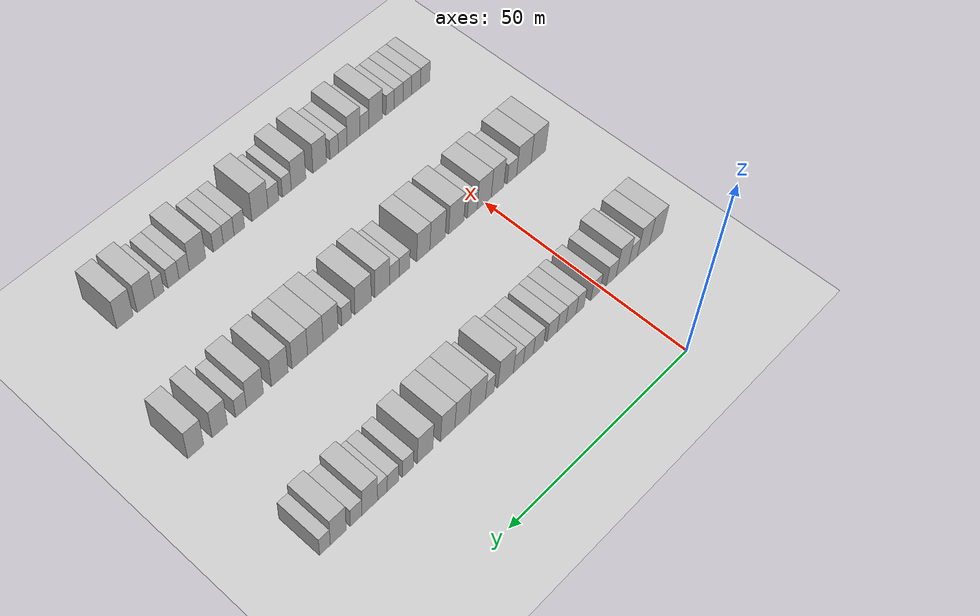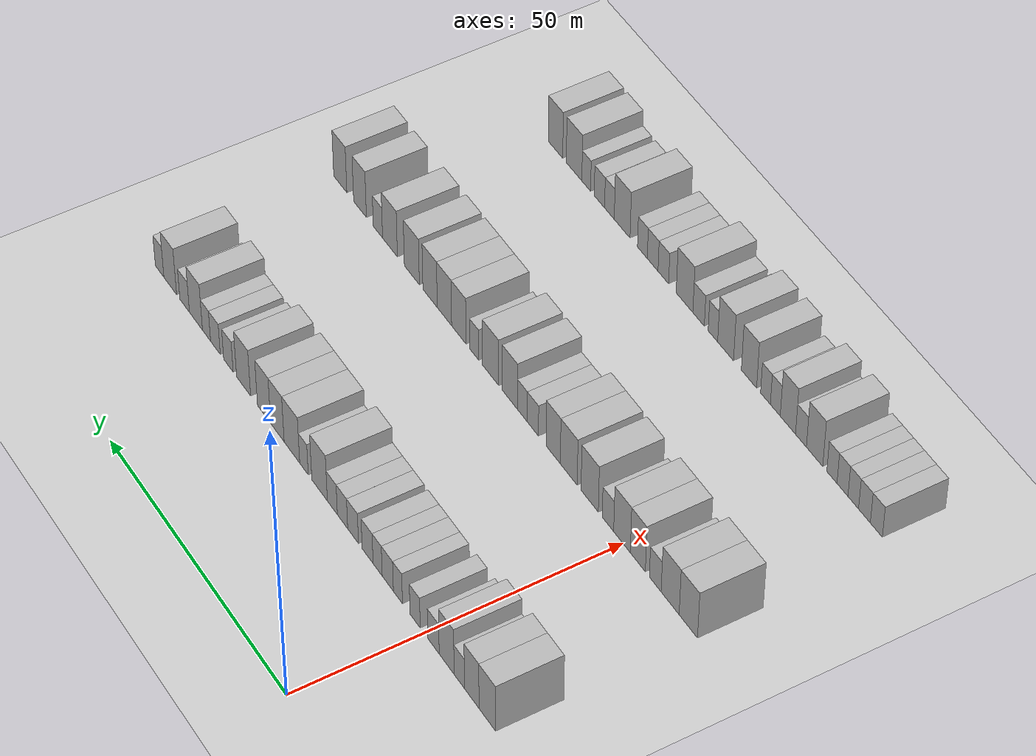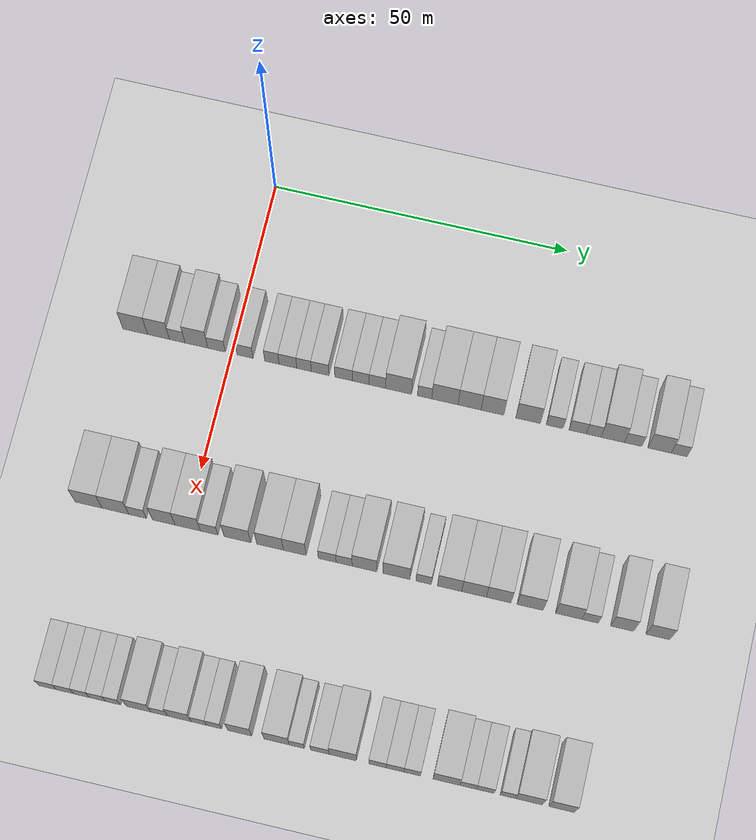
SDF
<sdf version="1.6">
 <world name="default">
  <include><name>ground_plane_1</name><uri>model://HANNAS_ground_plane</uri></include>
  <model name="building_110">
   <static>1</static>
   <pose>25.0000 -16.3483 0 0.000000 0.000000 0.000000</pose>
   <link name="link">
    <pose>0 0 4.50 0 0 0</pose>
    <collision name="collision"><geometry><box><size>10.0000 4.1961 9.0000</size></box></geometry></collision>
    <visual name="visual">
     <cast_shadows>0</cast_shadows>
     <geometry><box><size>10.0000 4.1961 9.0000</size></box></geometry>
     <material>
      <script>
       <uri>model://HANNAS_wall/materials/scripts</uri>
       <uri>model://HANNAS_wall/materials/textures</uri>
       <name>vrc/HANNAS_wall</name>
      </script>
     </material>
    </visual>
   </link>
  </model>
  <model name="building_111">
   <static>1</static>
   <pose>25.0000 -12.3957 0 0.000000 0.000000 0.000000</pose>
   <link name="link">
    <pose>0 0 4.50 0 0 0</pose>
    <collision name="collision"><geometry><box><size>10.0000 3.7091 9.0000</size></box></geometry></collision>
    <visual name="visual">
     <cast_shadows>0</cast_shadows>
     <geometry><box><size>10.0000 3.7091 9.0000</size></box></geometry>
     <material>
      <script>
       <uri>model://HANNAS_wall/materials/scripts</uri>
       <uri>model://HANNAS_wall/materials/textures</uri>
       <name>vrc/HANNAS_wall</name>
      </script>
     </material>
    </visual>
   </link>
  </model>
  <model name="building_112">
   <static>1</static>
   <pose>25.0000 -9.2106 0 0.000000 0.000000 0.000000</pose>
   <link name="link">
    <pose>0 0 3.00 0 0 0</pose>
    <collision name="collision"><geometry><box><size>10.0000 2.6610 6.0000</size></box></geometry></collision>
    <visual name="visual">
     <cast_shadows>0</cast_shadows>
     <geometry><box><size>10.0000 2.6610 6.0000</size></box></geometry>
     <material>
      <script>
       <uri>model://HANNAS_wall/materials/scripts</uri>
       <uri>model://HANNAS_wall/materials/textures</uri>
       <name>vrc/HANNAS_wall</name>
      </script>
     </material>
    </visual>
   </link>
  </model>
  <model name="building_113">
   <static>1</static>
   <pose>25.0000 -5.9461 0 0.000000 0.000000 0.000000</pose>
   <link name="link">
    <pose>0 0 4.50 0 0 0</pose>
    <collision name="collision"><geometry><box><size>10.0000 3.8680 9.0000</size></box></geometry></collision>
    <visual name="visual">
     <cast_shadows>0</cast_shadows>
     <geometry><box><size>10.0000 3.8680 9.0000</size></box></geometry>
     <material>
      <script>
       <uri>model://HANNAS_wall/materials/scripts</uri>
       <uri>model://HANNAS_wall/materials/textures</uri>
       <name>vrc/HANNAS_wall</name>
      </script>
     </material>
    </visual>
   </link>
  </model>
  <model name="building_114">
   <static>1</static>
   <pose>25.0000 -2.5321 0 0.000000 0.000000 0.000000</pose>
   <link name="link">
    <pose>0 0 3.00 0 0 0</pose>
    <collision name="collision"><geometry><box><size>10.0000 2.9600 6.0000</size></box></geometry></collision>
    <visual name="visual">
     <cast_shadows>0</cast_shadows>
     <geometry><box><size>10.0000 2.9600 6.0000</size></box></geometry>
     <material>
      <script>
       <uri>model://HANNAS_wall/materials/scripts</uri>
       <uri>model://HANNAS_wall/materials/textures</uri>
       <name>vrc/HANNAS_wall</name>
      </script>
     </material>
    </visual>
   </link>
  </model>
  <model name="building_115">
   <static>1</static>
   <pose>25.0000 2.2898 0 0.000000 0.000000 0.000000</pose>
   <link name="link">
    <pose>0 0 3.00 0 0 0</pose>
    <collision name="collision"><geometry><box><size>10.0000 2.6838 6.0000</size></box></geometry></collision>
    <visual name="visual">
     <cast_shadows>0</cast_shadows>
     <geometry><box><size>10.0000 2.6838 6.0000</size></box></geometry>
     <material>
      <script>
       <uri>model://HANNAS_wall/materials/scripts</uri>
       <uri>model://HANNAS_wall/materials/textures</uri>
       <name>vrc/HANNAS_wall</name>
      </script>
     </material>
    </visual>
   </link>
  </model>
  <model name="building_116">
   <static>1</static>
   <pose>25.0000 6.8391 0 0.000000 0.000000 0.000000</pose>
   <link name="link">
    <pose>0 0 3.00 0 0 0</pose>
    <collision name="collision"><geometry><box><size>10.0000 2.4148 6.0000</size></box></geometry></collision>
    <visual name="visual">
     <cast_shadows>0</cast_shadows>
     <geometry><box><size>10.0000 2.4148 6.0000</size></box></geometry>
     <material>
      <script>
       <uri>model://HANNAS_wall/materials/scripts</uri>
       <uri>model://HANNAS_wall/materials/textures</uri>
       <name>vrc/HANNAS_wall</name>
      </script>
     </material>
    </visual>
   </link>
  </model>
  <model name="building_117">
   <static>1</static>
   <pose>25.0000 9.5415 0 0.000000 0.000000 0.000000</pose>
   <link name="link">
    <pose>0 0 3.00 0 0 0</pose>
    <collision name="collision"><geometry><box><size>10.0000 2.9901 6.0000</size></box></geometry></collision>
    <visual name="visual">
     <cast_shadows>0</cast_shadows>
     <geometry><box><size>10.0000 2.9901 6.0000</size></box></geometry>
     <material>
      <script>
       <uri>model://HANNAS_wall/materials/scripts</uri>
       <uri>model://HANNAS_wall/materials/textures</uri>
       <name>vrc/HANNAS_wall</name>
      </script>
     </material>
    </visual>
   </link>
  </model>
  <model name="building_118">
   <static>1</static>
   <pose>25.0000 12.2671 0 0.000000 0.000000 0.000000</pose>
   <link name="link">
    <pose>0 0 3.00 0 0 0</pose>
    <collision name="collision"><geometry><box><size>10.0000 2.4611 6.0000</size></box></geometry></collision>
    <visual name="visual">
     <cast_shadows>0</cast_shadows>
     <geometry><box><size>10.0000 2.4611 6.0000</size></box></geometry>
     <material>
      <script>
       <uri>model://HANNAS_wall/materials/scripts</uri>
       <uri>model://HANNAS_wall/materials/textures</uri>
       <name>vrc/HANNAS_wall</name>
      </script>
     </material>
    </visual>
   </link>
  </model>
  <model name="building_119">
   <static>1</static>
   <pose>25.0000 14.9735 0 0.000000 0.000000 0.000000</pose>
   <link name="link">
    <pose>0 0 3.00 0 0 0</pose>
    <collision name="collision"><geometry><box><size>10.0000 2.9517 6.0000</size></box></geometry></collision>
    <visual name="visual">
     <cast_shadows>0</cast_shadows>
     <geometry><box><size>10.0000 2.9517 6.0000</size></box></geometry>
     <material>
      <script>
       <uri>model://HANNAS_wall/materials/scripts</uri>
       <uri>model://HANNAS_wall/materials/textures</uri>
       <name>vrc/HANNAS_wall</name>
      </script>
     </material>
    </visual>
   </link>
  </model>
  <model name="building_120">
   <static>1</static>
   <pose>25.0000 18.9226 0 0.000000 0.000000 0.000000</pose>
   <link name="link">
    <pose>0 0 3.00 0 0 0</pose>
    <collision name="collision"><geometry><box><size>10.0000 2.9467 6.0000</size></box></geometry></collision>
    <visual name="visual">
     <cast_shadows>0</cast_shadows>
     <geometry><box><size>10.0000 2.9467 6.0000</size></box></geometry>
     <material>
      <script>
       <uri>model://HANNAS_wall/materials/scripts</uri>
       <uri>model://HANNAS_wall/materials/textures</uri>
       <name>vrc/HANNAS_wall</name>
      </script>
     </material>
    </visual>
   </link>
  </model>
  <model name="building_121">
   <static>1</static>
   <pose>25.0000 21.8123 0 0.000000 0.000000 0.000000</pose>
   <link name="link">
    <pose>0 0 3.00 0 0 0</pose>
    <collision name="collision"><geometry><box><size>10.0000 2.8325 6.0000</size></box></geometry></collision>
    <visual name="visual">
     <cast_shadows>0</cast_shadows>
     <geometry><box><size>10.0000 2.8325 6.0000</size></box></geometry>
     <material>
      <script>
       <uri>model://HANNAS_wall/materials/scripts</uri>
       <uri>model://HANNAS_wall/materials/textures</uri>
       <name>vrc/HANNAS_wall</name>
      </script>
     </material>
    </visual>
   </link>
  </model>
  <model name="building_122">
   <static>1</static>
   <pose>25.0000 24.6135 0 0.000000 0.000000 0.000000</pose>
   <link name="link">
    <pose>0 0 3.00 0 0 0</pose>
    <collision name="collision"><geometry><box><size>10.0000 2.7700 6.0000</size></box></geometry></collision>
    <visual name="visual">
     <cast_shadows>0</cast_shadows>
     <geometry><box><size>10.0000 2.7700 6.0000</size></box></geometry>
     <material>
      <script>
       <uri>model://HANNAS_wall/materials/scripts</uri>
       <uri>model://HANNAS_wall/materials/textures</uri>
       <name>vrc/HANNAS_wall</name>
      </script>
     </material>
    </visual>
   </link>
  </model>
  <model name="building_123">
   <static>1</static>
   <pose>25.0000 28.1630 0 0.000000 0.000000 0.000000</pose>
   <link name="link">
    <pose>0 0 4.50 0 0 0</pose>
    <collision name="collision"><geometry><box><size>10.0000 4.3291 9.0000</size></box></geometry></collision>
    <visual name="visual">
     <cast_shadows>0</cast_shadows>
     <geometry><box><size>10.0000 4.3291 9.0000</size></box></geometry>
     <material>
      <script>
       <uri>model://HANNAS_wall/materials/scripts</uri>
       <uri>model://HANNAS_wall/materials/textures</uri>
       <name>vrc/HANNAS_wall</name>
      </script>
     </material>
    </visual>
   </link>
  </model>
  <model name="building_124">
   <static>1</static>
   <pose>25.0000 32.5312 0 0.000000 0.000000 0.000000</pose>
   <link name="link">
    <pose>0 0 3.00 0 0 0</pose>
    <collision name="collision"><geometry><box><size>10.0000 2.4074 6.0000</size></box></geometry></collision>
    <visual name="visual">
     <cast_shadows>0</cast_shadows>
     <geometry><box><size>10.0000 2.4074 6.0000</size></box></geometry>
     <material>
      <script>
       <uri>model://HANNAS_wall/materials/scripts</uri>
       <uri>model://HANNAS_wall/materials/textures</uri>
       <name>vrc/HANNAS_wall</name>
      </script>
     </material>
    </visual>
   </link>
  </model>
  <model name="building_125">
   <static>1</static>
   <pose>25.0000 35.9375 0 0.000000 0.000000 0.000000</pose>
   <link name="link">
    <pose>0 0 4.50 0 0 0</pose>
    <collision name="collision"><geometry><box><size>10.0000 4.4051 9.0000</size></box></geometry></collision>
    <visual name="visual">
     <cast_shadows>0</cast_shadows>
     <geometry><box><size>10.0000 4.4051 9.0000</size></box></geometry>
     <material>
      <script>
       <uri>model://HANNAS_wall/materials/scripts</uri>
       <uri>model://HANNAS_wall/materials/textures</uri>
       <name>vrc/HANNAS_wall</name>
      </script>
     </material>
    </visual>
   </link>
  </model>
  <model name="building_126">
   <static>1</static>
   <pose>25.0000 40.0583 0 0.000000 0.000000 0.000000</pose>
   <link name="link">
    <pose>0 0 4.50 0 0 0</pose>
    <collision name="collision"><geometry><box><size>10.0000 3.8366 9.0000</size></box></geometry></collision>
    <visual name="visual">
     <cast_shadows>0</cast_shadows>
     <geometry><box><size>10.0000 3.8366 9.0000</size></box></geometry>
     <material>
      <script>
       <uri>model://HANNAS_wall/materials/scripts</uri>
       <uri>model://HANNAS_wall/materials/textures</uri>
       <name>vrc/HANNAS_wall</name>
      </script>
     </material>
    </visual>
   </link>
  </model>
  <model name="building_127">
   <static>1</static>
   <pose>25.0000 43.8748 0 0.000000 0.000000 0.000000</pose>
   <link name="link">
    <pose>0 0 4.50 0 0 0</pose>
    <collision name="collision"><geometry><box><size>10.0000 3.7963 9.0000</size></box></geometry></collision>
    <visual name="visual">
     <cast_shadows>0</cast_shadows>
     <geometry><box><size>10.0000 3.7963 9.0000</size></box></geometry>
     <material>
      <script>
       <uri>model://HANNAS_wall/materials/scripts</uri>
       <uri>model://HANNAS_wall/materials/textures</uri>
       <name>vrc/HANNAS_wall</name>
      </script>
     </material>
    </visual>
   </link>
  </model>
  <model name="building_128">
   <static>1</static>
   <pose>25.0000 49.8148 0 0.000000 0.000000 0.000000</pose>
   <link name="link">
    <pose>0 0 4.50 0 0 0</pose>
    <collision name="collision"><geometry><box><size>10.0000 4.0838 9.0000</size></box></geometry></collision>
    <visual name="visual">
     <cast_shadows>0</cast_shadows>
     <geometry><box><size>10.0000 4.0838 9.0000</size></box></geometry>
     <material>
      <script>
       <uri>model://HANNAS_wall/materials/scripts</uri>
       <uri>model://HANNAS_wall/materials/textures</uri>
       <name>vrc/HANNAS_wall</name>
      </script>
     </material>
    </visual>
   </link>
  </model>
  <model name="building_129">
   <static>1</static>
   <pose>25.0000 54.2531 0 0.000000 0.000000 0.000000</pose>
   <link name="link">
    <pose>0 0 3.00 0 0 0</pose>
    <collision name="collision"><geometry><box><size>10.0000 2.7929 6.0000</size></box></geometry></collision>
    <visual name="visual">
     <cast_shadows>0</cast_shadows>
     <geometry><box><size>10.0000 2.7929 6.0000</size></box></geometry>
     <material>
      <script>
       <uri>model://HANNAS_wall/materials/scripts</uri>
       <uri>model://HANNAS_wall/materials/textures</uri>
       <name>vrc/HANNAS_wall</name>
      </script>
     </material>
    </visual>
   </link>
  </model>
  <model name="building_130">
   <static>1</static>
   <pose>25.0000 58.0858 0 0.000000 0.000000 0.000000</pose>
   <link name="link">
    <pose>0 0 3.00 0 0 0</pose>
    <collision name="collision"><geometry><box><size>10.0000 2.8725 6.0000</size></box></geometry></collision>
    <visual name="visual">
     <cast_shadows>0</cast_shadows>
     <geometry><box><size>10.0000 2.8725 6.0000</size></box></geometry>
     <material>
      <script>
       <uri>model://HANNAS_wall/materials/scripts</uri>
       <uri>model://HANNAS_wall/materials/textures</uri>
       <name>vrc/HANNAS_wall</name>
      </script>
     </material>
    </visual>
   </link>
  </model>
  <model name="building_131">
   <static>1</static>
   <pose>25.0000 60.7344 0 0.000000 0.000000 0.000000</pose>
   <link name="link">
    <pose>0 0 3.00 0 0 0</pose>
    <collision name="collision"><geometry><box><size>10.0000 2.4247 6.0000</size></box></geometry></collision>
    <visual name="visual">
     <cast_shadows>0</cast_shadows>
     <geometry><box><size>10.0000 2.4247 6.0000</size></box></geometry>
     <material>
      <script>
       <uri>model://HANNAS_wall/materials/scripts</uri>
       <uri>model://HANNAS_wall/materials/textures</uri>
       <name>vrc/HANNAS_wall</name>
      </script>
     </material>
    </visual>
   </link>
  </model>
  <model name="building_132">
   <static>1</static>
   <pose>25.0000 63.8977 0 0.000000 0.000000 0.000000</pose>
   <link name="link">
    <pose>0 0 4.50 0 0 0</pose>
    <collision name="collision"><geometry><box><size>10.0000 3.9019 9.0000</size></box></geometry></collision>
    <visual name="visual">
     <cast_shadows>0</cast_shadows>
     <geometry><box><size>10.0000 3.9019 9.0000</size></box></geometry>
     <material>
      <script>
       <uri>model://HANNAS_wall/materials/scripts</uri>
       <uri>model://HANNAS_wall/materials/textures</uri>
       <name>vrc/HANNAS_wall</name>
      </script>
     </material>
    </visual>
   </link>
  </model>
  <model name="building_133">
   <static>1</static>
   <pose>25.0000 67.2927 0 0.000000 0.000000 0.000000</pose>
   <link name="link">
    <pose>0 0 3.00 0 0 0</pose>
    <collision name="collision"><geometry><box><size>10.0000 2.8882 6.0000</size></box></geometry></collision>
    <visual name="visual">
     <cast_shadows>0</cast_shadows>
     <geometry><box><size>10.0000 2.8882 6.0000</size></box></geometry>
     <material>
      <script>
       <uri>model://HANNAS_wall/materials/scripts</uri>
       <uri>model://HANNAS_wall/materials/textures</uri>
       <name>vrc/HANNAS_wall</name>
      </script>
     </material>
    </visual>
   </link>
  </model>
  <model name="building_134">
   <static>1</static>
   <pose>25.0000 71.6695 0 0.000000 0.000000 0.000000</pose>
   <link name="link">
    <pose>0 0 4.50 0 0 0</pose>
    <collision name="collision"><geometry><box><size>10.0000 3.8654 9.0000</size></box></geometry></collision>
    <visual name="visual">
     <cast_shadows>0</cast_shadows>
     <geometry><box><size>10.0000 3.8654 9.0000</size></box></geometry>
     <material>
      <script>
       <uri>model://HANNAS_wall/materials/scripts</uri>
       <uri>model://HANNAS_wall/materials/textures</uri>
       <name>vrc/HANNAS_wall</name>
      </script>
     </material>
    </visual>
   </link>
  </model>
  <model name="building_135">
   <static>1</static>
   <pose>25.0000 74.9072 0 0.000000 0.000000 0.000000</pose>
   <link name="link">
    <pose>0 0 3.00 0 0 0</pose>
    <collision name="collision"><geometry><box><size>10.0000 2.6099 6.0000</size></box></geometry></collision>
    <visual name="visual">
     <cast_shadows>0</cast_shadows>
     <geometry><box><size>10.0000 2.6099 6.0000</size></box></geometry>
     <material>
      <script>
       <uri>model://HANNAS_wall/materials/scripts</uri>
       <uri>model://HANNAS_wall/materials/textures</uri>
       <name>vrc/HANNAS_wall</name>
      </script>
     </material>
    </visual>
   </link>
  </model>
  <model name="building_347">
   <static>1</static>
   <pose>55.0000 -16.1618 0 0.000000 0.000000 0.000000</pose>
   <link name="link">
    <pose>0 0 4.50 0 0 0</pose>
    <collision name="collision"><geometry><box><size>10.0000 4.4909 9.0000</size></box></geometry></collision>
    <visual name="visual">
     <cast_shadows>0</cast_shadows>
     <geometry><box><size>10.0000 4.4909 9.0000</size></box></geometry>
     <material>
      <script>
       <uri>model://HANNAS_wall/materials/scripts</uri>
       <uri>model://HANNAS_wall/materials/textures</uri>
       <name>vrc/HANNAS_wall</name>
      </script>
     </material>
    </visual>
   </link>
  </model>
  <model name="building_348">
   <static>1</static>
   <pose>55.0000 -11.6974 0 0.000000 0.000000 0.000000</pose>
   <link name="link">
    <pose>0 0 4.50 0 0 0</pose>
    <collision name="collision"><geometry><box><size>10.0000 4.4381 9.0000</size></box></geometry></collision>
    <visual name="visual">
     <cast_shadows>0</cast_shadows>
     <geometry><box><size>10.0000 4.4381 9.0000</size></box></geometry>
     <material>
      <script>
       <uri>model://HANNAS_wall/materials/scripts</uri>
       <uri>model://HANNAS_wall/materials/textures</uri>
       <name>vrc/HANNAS_wall</name>
      </script>
     </material>
    </visual>
   </link>
  </model>
  <model name="building_349">
   <static>1</static>
   <pose>55.0000 -8.0192 0 0.000000 0.000000 0.000000</pose>
   <link name="link">
    <pose>0 0 3.00 0 0 0</pose>
    <collision name="collision"><geometry><box><size>10.0000 2.9183 6.0000</size></box></geometry></collision>
    <visual name="visual">
     <cast_shadows>0</cast_shadows>
     <geometry><box><size>10.0000 2.9183 6.0000</size></box></geometry>
     <material>
      <script>
       <uri>model://HANNAS_wall/materials/scripts</uri>
       <uri>model://HANNAS_wall/materials/textures</uri>
       <name>vrc/HANNAS_wall</name>
      </script>
     </material>
    </visual>
   </link>
  </model>
  <model name="building_350">
   <static>1</static>
   <pose>55.0000 -3.6680 0 0.000000 0.000000 0.000000</pose>
   <link name="link">
    <pose>0 0 4.50 0 0 0</pose>
    <collision name="collision"><geometry><box><size>10.0000 3.7841 9.0000</size></box></geometry></collision>
    <visual name="visual">
     <cast_shadows>0</cast_shadows>
     <geometry><box><size>10.0000 3.7841 9.0000</size></box></geometry>
     <material>
      <script>
       <uri>model://HANNAS_wall/materials/scripts</uri>
       <uri>model://HANNAS_wall/materials/textures</uri>
       <name>vrc/HANNAS_wall</name>
      </script>
     </material>
    </visual>
   </link>
  </model>
  <model name="building_351">
   <static>1</static>
   <pose>55.0000 0.3241 0 0.000000 0.000000 0.000000</pose>
   <link name="link">
    <pose>0 0 4.50 0 0 0</pose>
    <collision name="collision"><geometry><box><size>10.0000 4.2002 9.0000</size></box></geometry></collision>
    <visual name="visual">
     <cast_shadows>0</cast_shadows>
     <geometry><box><size>10.0000 4.2002 9.0000</size></box></geometry>
     <material>
      <script>
       <uri>model://HANNAS_wall/materials/scripts</uri>
       <uri>model://HANNAS_wall/materials/textures</uri>
       <name>vrc/HANNAS_wall</name>
      </script>
     </material>
    </visual>
   </link>
  </model>
  <model name="building_352">
   <static>1</static>
   <pose>55.0000 3.8815 0 0.000000 0.000000 0.000000</pose>
   <link name="link">
    <pose>0 0 3.00 0 0 0</pose>
    <collision name="collision"><geometry><box><size>10.0000 2.9144 6.0000</size></box></geometry></collision>
    <visual name="visual">
     <cast_shadows>0</cast_shadows>
     <geometry><box><size>10.0000 2.9144 6.0000</size></box></geometry>
     <material>
      <script>
       <uri>model://HANNAS_wall/materials/scripts</uri>
       <uri>model://HANNAS_wall/materials/textures</uri>
       <name>vrc/HANNAS_wall</name>
      </script>
     </material>
    </visual>
   </link>
  </model>
  <model name="building_353">
   <static>1</static>
   <pose>55.0000 8.5628 0 0.000000 0.000000 0.000000</pose>
   <link name="link">
    <pose>0 0 4.50 0 0 0</pose>
    <collision name="collision"><geometry><box><size>10.0000 4.4483 9.0000</size></box></geometry></collision>
    <visual name="visual">
     <cast_shadows>0</cast_shadows>
     <geometry><box><size>10.0000 4.4483 9.0000</size></box></geometry>
     <material>
      <script>
       <uri>model://HANNAS_wall/materials/scripts</uri>
       <uri>model://HANNAS_wall/materials/textures</uri>
       <name>vrc/HANNAS_wall</name>
      </script>
     </material>
    </visual>
   </link>
  </model>
  <model name="building_354">
   <static>1</static>
   <pose>55.0000 13.9788 0 0.000000 0.000000 0.000000</pose>
   <link name="link">
    <pose>0 0 4.50 0 0 0</pose>
    <collision name="collision"><geometry><box><size>10.0000 4.3838 9.0000</size></box></geometry></collision>
    <visual name="visual">
     <cast_shadows>0</cast_shadows>
     <geometry><box><size>10.0000 4.3838 9.0000</size></box></geometry>
     <material>
      <script>
       <uri>model://HANNAS_wall/materials/scripts</uri>
       <uri>model://HANNAS_wall/materials/textures</uri>
       <name>vrc/HANNAS_wall</name>
      </script>
     </material>
    </visual>
   </link>
  </model>
  <model name="building_355">
   <static>1</static>
   <pose>55.0000 18.0487 0 0.000000 0.000000 0.000000</pose>
   <link name="link">
    <pose>0 0 4.50 0 0 0</pose>
    <collision name="collision"><geometry><box><size>10.0000 3.7559 9.0000</size></box></geometry></collision>
    <visual name="visual">
     <cast_shadows>0</cast_shadows>
     <geometry><box><size>10.0000 3.7559 9.0000</size></box></geometry>
     <material>
      <script>
       <uri>model://HANNAS_wall/materials/scripts</uri>
       <uri>model://HANNAS_wall/materials/textures</uri>
       <name>vrc/HANNAS_wall</name>
      </script>
     </material>
    </visual>
   </link>
  </model>
  <model name="building_356">
   <static>1</static>
   <pose>55.0000 23.4030 0 0.000000 0.000000 0.000000</pose>
   <link name="link">
    <pose>0 0 3.00 0 0 0</pose>
    <collision name="collision"><geometry><box><size>10.0000 2.9528 6.0000</size></box></geometry></collision>
    <visual name="visual">
     <cast_shadows>0</cast_shadows>
     <geometry><box><size>10.0000 2.9528 6.0000</size></box></geometry>
     <material>
      <script>
       <uri>model://HANNAS_wall/materials/scripts</uri>
       <uri>model://HANNAS_wall/materials/textures</uri>
       <name>vrc/HANNAS_wall</name>
      </script>
     </material>
    </visual>
   </link>
  </model>
  <model name="building_357">
   <static>1</static>
   <pose>55.0000 26.1905 0 0.000000 0.000000 0.000000</pose>
   <link name="link">
    <pose>0 0 3.00 0 0 0</pose>
    <collision name="collision"><geometry><box><size>10.0000 2.6221 6.0000</size></box></geometry></collision>
    <visual name="visual">
     <cast_shadows>0</cast_shadows>
     <geometry><box><size>10.0000 2.6221 6.0000</size></box></geometry>
     <material>
      <script>
       <uri>model://HANNAS_wall/materials/scripts</uri>
       <uri>model://HANNAS_wall/materials/textures</uri>
       <name>vrc/HANNAS_wall</name>
      </script>
     </material>
    </visual>
   </link>
  </model>
  <model name="building_358">
   <static>1</static>
   <pose>55.0000 29.5306 0 0.000000 0.000000 0.000000</pose>
   <link name="link">
    <pose>0 0 4.50 0 0 0</pose>
    <collision name="collision"><geometry><box><size>10.0000 4.0579 9.0000</size></box></geometry></collision>
    <visual name="visual">
     <cast_shadows>0</cast_shadows>
     <geometry><box><size>10.0000 4.0579 9.0000</size></box></geometry>
     <material>
      <script>
       <uri>model://HANNAS_wall/materials/scripts</uri>
       <uri>model://HANNAS_wall/materials/textures</uri>
       <name>vrc/HANNAS_wall</name>
      </script>
     </material>
    </visual>
   </link>
  </model>
  <model name="building_359">
   <static>1</static>
   <pose>55.0000 34.7676 0 0.000000 0.000000 0.000000</pose>
   <link name="link">
    <pose>0 0 4.50 0 0 0</pose>
    <collision name="collision"><geometry><box><size>10.0000 4.4163 9.0000</size></box></geometry></collision>
    <visual name="visual">
     <cast_shadows>0</cast_shadows>
     <geometry><box><size>10.0000 4.4163 9.0000</size></box></geometry>
     <material>
      <script>
       <uri>model://HANNAS_wall/materials/scripts</uri>
       <uri>model://HANNAS_wall/materials/textures</uri>
       <name>vrc/HANNAS_wall</name>
      </script>
     </material>
    </visual>
   </link>
  </model>
  <model name="building_360">
   <static>1</static>
   <pose>55.0000 39.2343 0 0.000000 0.000000 0.000000</pose>
   <link name="link">
    <pose>0 0 3.00 0 0 0</pose>
    <collision name="collision"><geometry><box><size>10.0000 2.5171 6.0000</size></box></geometry></collision>
    <visual name="visual">
     <cast_shadows>0</cast_shadows>
     <geometry><box><size>10.0000 2.5171 6.0000</size></box></geometry>
     <material>
      <script>
       <uri>model://HANNAS_wall/materials/scripts</uri>
       <uri>model://HANNAS_wall/materials/textures</uri>
       <name>vrc/HANNAS_wall</name>
      </script>
     </material>
    </visual>
   </link>
  </model>
  <model name="building_361">
   <static>1</static>
   <pose>55.0000 43.4870 0 0.000000 0.000000 0.000000</pose>
   <link name="link">
    <pose>0 0 4.50 0 0 0</pose>
    <collision name="collision"><geometry><box><size>10.0000 3.9881 9.0000</size></box></geometry></collision>
    <visual name="visual">
     <cast_shadows>0</cast_shadows>
     <geometry><box><size>10.0000 3.9881 9.0000</size></box></geometry>
     <material>
      <script>
       <uri>model://HANNAS_wall/materials/scripts</uri>
       <uri>model://HANNAS_wall/materials/textures</uri>
       <name>vrc/HANNAS_wall</name>
      </script>
     </material>
    </visual>
   </link>
  </model>
  <model name="building_362">
   <static>1</static>
   <pose>55.0000 47.4883 0 0.000000 0.000000 0.000000</pose>
   <link name="link">
    <pose>0 0 4.50 0 0 0</pose>
    <collision name="collision"><geometry><box><size>10.0000 4.0146 9.0000</size></box></geometry></collision>
    <visual name="visual">
     <cast_shadows>0</cast_shadows>
     <geometry><box><size>10.0000 4.0146 9.0000</size></box></geometry>
     <material>
      <script>
       <uri>model://HANNAS_wall/materials/scripts</uri>
       <uri>model://HANNAS_wall/materials/textures</uri>
       <name>vrc/HANNAS_wall</name>
      </script>
     </material>
    </visual>
   </link>
  </model>
  <model name="building_363">
   <static>1</static>
   <pose>55.0000 51.5100 0 0.000000 0.000000 0.000000</pose>
   <link name="link">
    <pose>0 0 4.50 0 0 0</pose>
    <collision name="collision"><geometry><box><size>10.0000 4.0286 9.0000</size></box></geometry></collision>
    <visual name="visual">
     <cast_shadows>0</cast_shadows>
     <geometry><box><size>10.0000 4.0286 9.0000</size></box></geometry>
     <material>
      <script>
       <uri>model://HANNAS_wall/materials/scripts</uri>
       <uri>model://HANNAS_wall/materials/textures</uri>
       <name>vrc/HANNAS_wall</name>
      </script>
     </material>
    </visual>
   </link>
  </model>
  <model name="building_364">
   <static>1</static>
   <pose>55.0000 56.6542 0 0.000000 0.000000 0.000000</pose>
   <link name="link">
    <pose>0 0 4.50 0 0 0</pose>
    <collision name="collision"><geometry><box><size>10.0000 4.2599 9.0000</size></box></geometry></collision>
    <visual name="visual">
     <cast_shadows>0</cast_shadows>
     <geometry><box><size>10.0000 4.2599 9.0000</size></box></geometry>
     <material>
      <script>
       <uri>model://HANNAS_wall/materials/scripts</uri>
       <uri>model://HANNAS_wall/materials/textures</uri>
       <name>vrc/HANNAS_wall</name>
      </script>
     </material>
    </visual>
   </link>
  </model>
  <model name="building_365">
   <static>1</static>
   <pose>55.0000 62.9202 0 0.000000 0.000000 0.000000</pose>
   <link name="link">
    <pose>0 0 4.50 0 0 0</pose>
    <collision name="collision"><geometry><box><size>10.0000 4.2720 9.0000</size></box></geometry></collision>
    <visual name="visual">
     <cast_shadows>0</cast_shadows>
     <geometry><box><size>10.0000 4.2720 9.0000</size></box></geometry>
     <material>
      <script>
       <uri>model://HANNAS_wall/materials/scripts</uri>
       <uri>model://HANNAS_wall/materials/textures</uri>
       <name>vrc/HANNAS_wall</name>
      </script>
     </material>
    </visual>
   </link>
  </model>
  <model name="building_366">
   <static>1</static>
   <pose>55.0000 66.4025 0 0.000000 0.000000 0.000000</pose>
   <link name="link">
    <pose>0 0 3.00 0 0 0</pose>
    <collision name="collision"><geometry><box><size>10.0000 2.6926 6.0000</size></box></geometry></collision>
    <visual name="visual">
     <cast_shadows>0</cast_shadows>
     <geometry><box><size>10.0000 2.6926 6.0000</size></box></geometry>
     <material>
      <script>
       <uri>model://HANNAS_wall/materials/scripts</uri>
       <uri>model://HANNAS_wall/materials/textures</uri>
       <name>vrc/HANNAS_wall</name>
      </script>
     </material>
    </visual>
   </link>
  </model>
  <model name="building_367">
   <static>1</static>
   <pose>55.0000 71.6175 0 0.000000 0.000000 0.000000</pose>
   <link name="link">
    <pose>0 0 4.50 0 0 0</pose>
    <collision name="collision"><geometry><box><size>10.0000 3.7374 9.0000</size></box></geometry></collision>
    <visual name="visual">
     <cast_shadows>0</cast_shadows>
     <geometry><box><size>10.0000 3.7374 9.0000</size></box></geometry>
     <material>
      <script>
       <uri>model://HANNAS_wall/materials/scripts</uri>
       <uri>model://HANNAS_wall/materials/textures</uri>
       <name>vrc/HANNAS_wall</name>
      </script>
     </material>
    </visual>
   </link>
  </model>
  <model name="building_368">
   <static>1</static>
   <pose>55.0000 77.4240 0 0.000000 0.000000 0.000000</pose>
   <link name="link">
    <pose>0 0 4.50 0 0 0</pose>
    <collision name="collision"><geometry><box><size>10.0000 3.8756 9.0000</size></box></geometry></collision>
    <visual name="visual">
     <cast_shadows>0</cast_shadows>
     <geometry><box><size>10.0000 3.8756 9.0000</size></box></geometry>
     <material>
      <script>
       <uri>model://HANNAS_wall/materials/scripts</uri>
       <uri>model://HANNAS_wall/materials/textures</uri>
       <name>vrc/HANNAS_wall</name>
      </script>
     </material>
    </visual>
   </link>
  </model>
  <model name="building_578">
   <static>1</static>
   <pose>85.0000 -14.7017 0 0.000000 0.000000 0.000000</pose>
   <link name="link">
    <pose>0 0 3.00 0 0 0</pose>
    <collision name="collision"><geometry><box><size>10.0000 2.8593 6.0000</size></box></geometry></collision>
    <visual name="visual">
     <cast_shadows>0</cast_shadows>
     <geometry><box><size>10.0000 2.8593 6.0000</size></box></geometry>
     <material>
      <script>
       <uri>model://HANNAS_wall/materials/scripts</uri>
       <uri>model://HANNAS_wall/materials/textures</uri>
       <name>vrc/HANNAS_wall</name>
      </script>
     </material>
    </visual>
   </link>
  </model>
  <model name="building_579">
   <static>1</static>
   <pose>85.0000 -11.8681 0 0.000000 0.000000 0.000000</pose>
   <link name="link">
    <pose>0 0 3.00 0 0 0</pose>
    <collision name="collision"><geometry><box><size>10.0000 2.8080 6.0000</size></box></geometry></collision>
    <visual name="visual">
     <cast_shadows>0</cast_shadows>
     <geometry><box><size>10.0000 2.8080 6.0000</size></box></geometry>
     <material>
      <script>
       <uri>model://HANNAS_wall/materials/scripts</uri>
       <uri>model://HANNAS_wall/materials/textures</uri>
       <name>vrc/HANNAS_wall</name>
      </script>
     </material>
    </visual>
   </link>
  </model>
  <model name="building_580">
   <static>1</static>
   <pose>85.0000 -9.1895 0 0.000000 0.000000 0.000000</pose>
   <link name="link">
    <pose>0 0 3.00 0 0 0</pose>
    <collision name="collision"><geometry><box><size>10.0000 2.5492 6.0000</size></box></geometry></collision>
    <visual name="visual">
     <cast_shadows>0</cast_shadows>
     <geometry><box><size>10.0000 2.5492 6.0000</size></box></geometry>
     <material>
      <script>
       <uri>model://HANNAS_wall/materials/scripts</uri>
       <uri>model://HANNAS_wall/materials/textures</uri>
       <name>vrc/HANNAS_wall</name>
      </script>
     </material>
    </visual>
   </link>
  </model>
  <model name="building_581">
   <static>1</static>
   <pose>85.0000 -6.5937 0 0.000000 0.000000 0.000000</pose>
   <link name="link">
    <pose>0 0 3.00 0 0 0</pose>
    <collision name="collision"><geometry><box><size>10.0000 2.6423 6.0000</size></box></geometry></collision>
    <visual name="visual">
     <cast_shadows>0</cast_shadows>
     <geometry><box><size>10.0000 2.6423 6.0000</size></box></geometry>
     <material>
      <script>
       <uri>model://HANNAS_wall/materials/scripts</uri>
       <uri>model://HANNAS_wall/materials/textures</uri>
       <name>vrc/HANNAS_wall</name>
      </script>
     </material>
    </visual>
   </link>
  </model>
  <model name="building_582">
   <static>1</static>
   <pose>85.0000 -4.0431 0 0.000000 0.000000 0.000000</pose>
   <link name="link">
    <pose>0 0 3.00 0 0 0</pose>
    <collision name="collision"><geometry><box><size>10.0000 2.4588 6.0000</size></box></geometry></collision>
    <visual name="visual">
     <cast_shadows>0</cast_shadows>
     <geometry><box><size>10.0000 2.4588 6.0000</size></box></geometry>
     <material>
      <script>
       <uri>model://HANNAS_wall/materials/scripts</uri>
       <uri>model://HANNAS_wall/materials/textures</uri>
       <name>vrc/HANNAS_wall</name>
      </script>
     </material>
    </visual>
   </link>
  </model>
  <model name="building_583">
   <static>1</static>
   <pose>85.0000 0.1887 0 0.000000 0.000000 0.000000</pose>
   <link name="link">
    <pose>0 0 4.50 0 0 0</pose>
    <collision name="collision"><geometry><box><size>10.0000 4.0049 9.0000</size></box></geometry></collision>
    <visual name="visual">
     <cast_shadows>0</cast_shadows>
     <geometry><box><size>10.0000 4.0049 9.0000</size></box></geometry>
     <material>
      <script>
       <uri>model://HANNAS_wall/materials/scripts</uri>
       <uri>model://HANNAS_wall/materials/textures</uri>
       <name>vrc/HANNAS_wall</name>
      </script>
     </material>
    </visual>
   </link>
  </model>
  <model name="building_584">
   <static>1</static>
   <pose>85.0000 3.5358 0 0.000000 0.000000 0.000000</pose>
   <link name="link">
    <pose>0 0 3.00 0 0 0</pose>
    <collision name="collision"><geometry><box><size>10.0000 2.6892 6.0000</size></box></geometry></collision>
    <visual name="visual">
     <cast_shadows>0</cast_shadows>
     <geometry><box><size>10.0000 2.6892 6.0000</size></box></geometry>
     <material>
      <script>
       <uri>model://HANNAS_wall/materials/scripts</uri>
       <uri>model://HANNAS_wall/materials/textures</uri>
       <name>vrc/HANNAS_wall</name>
      </script>
     </material>
    </visual>
   </link>
  </model>
  <model name="building_585">
   <static>1</static>
   <pose>85.0000 6.7764 0 0.000000 0.000000 0.000000</pose>
   <link name="link">
    <pose>0 0 4.50 0 0 0</pose>
    <collision name="collision"><geometry><box><size>10.0000 3.7920 9.0000</size></box></geometry></collision>
    <visual name="visual">
     <cast_shadows>0</cast_shadows>
     <geometry><box><size>10.0000 3.7920 9.0000</size></box></geometry>
     <material>
      <script>
       <uri>model://HANNAS_wall/materials/scripts</uri>
       <uri>model://HANNAS_wall/materials/textures</uri>
       <name>vrc/HANNAS_wall</name>
      </script>
     </material>
    </visual>
   </link>
  </model>
  <model name="building_586">
   <static>1</static>
   <pose>85.0000 9.9040 0 0.000000 0.000000 0.000000</pose>
   <link name="link">
    <pose>0 0 3.00 0 0 0</pose>
    <collision name="collision"><geometry><box><size>10.0000 2.4633 6.0000</size></box></geometry></collision>
    <visual name="visual">
     <cast_shadows>0</cast_shadows>
     <geometry><box><size>10.0000 2.4633 6.0000</size></box></geometry>
     <material>
      <script>
       <uri>model://HANNAS_wall/materials/scripts</uri>
       <uri>model://HANNAS_wall/materials/textures</uri>
       <name>vrc/HANNAS_wall</name>
      </script>
     </material>
    </visual>
   </link>
  </model>
  <model name="building_587">
   <static>1</static>
   <pose>85.0000 12.3634 0 0.000000 0.000000 0.000000</pose>
   <link name="link">
    <pose>0 0 3.00 0 0 0</pose>
    <collision name="collision"><geometry><box><size>10.0000 2.4554 6.0000</size></box></geometry></collision>
    <visual name="visual">
     <cast_shadows>0</cast_shadows>
     <geometry><box><size>10.0000 2.4554 6.0000</size></box></geometry>
     <material>
      <script>
       <uri>model://HANNAS_wall/materials/scripts</uri>
       <uri>model://HANNAS_wall/materials/textures</uri>
       <name>vrc/HANNAS_wall</name>
      </script>
     </material>
    </visual>
   </link>
  </model>
  <model name="building_588">
   <static>1</static>
   <pose>85.0000 16.5230 0 0.000000 0.000000 0.000000</pose>
   <link name="link">
    <pose>0 0 4.50 0 0 0</pose>
    <collision name="collision"><geometry><box><size>10.0000 3.8638 9.0000</size></box></geometry></collision>
    <visual name="visual">
     <cast_shadows>0</cast_shadows>
     <geometry><box><size>10.0000 3.8638 9.0000</size></box></geometry>
     <material>
      <script>
       <uri>model://HANNAS_wall/materials/scripts</uri>
       <uri>model://HANNAS_wall/materials/textures</uri>
       <name>vrc/HANNAS_wall</name>
      </script>
     </material>
    </visual>
   </link>
  </model>
  <model name="building_589">
   <static>1</static>
   <pose>85.0000 22.4902 0 0.000000 0.000000 0.000000</pose>
   <link name="link">
    <pose>0 0 4.50 0 0 0</pose>
    <collision name="collision"><geometry><box><size>10.0000 4.0707 9.0000</size></box></geometry></collision>
    <visual name="visual">
     <cast_shadows>0</cast_shadows>
     <geometry><box><size>10.0000 4.0707 9.0000</size></box></geometry>
     <material>
      <script>
       <uri>model://HANNAS_wall/materials/scripts</uri>
       <uri>model://HANNAS_wall/materials/textures</uri>
       <name>vrc/HANNAS_wall</name>
      </script>
     </material>
    </visual>
   </link>
  </model>
  <model name="building_590">
   <static>1</static>
   <pose>85.0000 25.7477 0 0.000000 0.000000 0.000000</pose>
   <link name="link">
    <pose>0 0 3.00 0 0 0</pose>
    <collision name="collision"><geometry><box><size>10.0000 2.4443 6.0000</size></box></geometry></collision>
    <visual name="visual">
     <cast_shadows>0</cast_shadows>
     <geometry><box><size>10.0000 2.4443 6.0000</size></box></geometry>
     <material>
      <script>
       <uri>model://HANNAS_wall/materials/scripts</uri>
       <uri>model://HANNAS_wall/materials/textures</uri>
       <name>vrc/HANNAS_wall</name>
      </script>
     </material>
    </visual>
   </link>
  </model>
  <model name="building_591">
   <static>1</static>
   <pose>85.0000 29.4623 0 0.000000 0.000000 0.000000</pose>
   <link name="link">
    <pose>0 0 3.00 0 0 0</pose>
    <collision name="collision"><geometry><box><size>10.0000 2.9848 6.0000</size></box></geometry></collision>
    <visual name="visual">
     <cast_shadows>0</cast_shadows>
     <geometry><box><size>10.0000 2.9848 6.0000</size></box></geometry>
     <material>
      <script>
       <uri>model://HANNAS_wall/materials/scripts</uri>
       <uri>model://HANNAS_wall/materials/textures</uri>
       <name>vrc/HANNAS_wall</name>
      </script>
     </material>
    </visual>
   </link>
  </model>
  <model name="building_592">
   <static>1</static>
   <pose>85.0000 33.1374 0 0.000000 0.000000 0.000000</pose>
   <link name="link">
    <pose>0 0 4.50 0 0 0</pose>
    <collision name="collision"><geometry><box><size>10.0000 4.3655 9.0000</size></box></geometry></collision>
    <visual name="visual">
     <cast_shadows>0</cast_shadows>
     <geometry><box><size>10.0000 4.3655 9.0000</size></box></geometry>
     <material>
      <script>
       <uri>model://HANNAS_wall/materials/scripts</uri>
       <uri>model://HANNAS_wall/materials/textures</uri>
       <name>vrc/HANNAS_wall</name>
      </script>
     </material>
    </visual>
   </link>
  </model>
  <model name="building_593">
   <static>1</static>
   <pose>85.0000 38.7225 0 0.000000 0.000000 0.000000</pose>
   <link name="link">
    <pose>0 0 3.00 0 0 0</pose>
    <collision name="collision"><geometry><box><size>10.0000 2.8046 6.0000</size></box></geometry></collision>
    <visual name="visual">
     <cast_shadows>0</cast_shadows>
     <geometry><box><size>10.0000 2.8046 6.0000</size></box></geometry>
     <material>
      <script>
       <uri>model://HANNAS_wall/materials/scripts</uri>
       <uri>model://HANNAS_wall/materials/textures</uri>
       <name>vrc/HANNAS_wall</name>
      </script>
     </material>
    </visual>
   </link>
  </model>
  <model name="building_594">
   <static>1</static>
   <pose>85.0000 41.5580 0 0.000000 0.000000 0.000000</pose>
   <link name="link">
    <pose>0 0 3.00 0 0 0</pose>
    <collision name="collision"><geometry><box><size>10.0000 2.8664 6.0000</size></box></geometry></collision>
    <visual name="visual">
     <cast_shadows>0</cast_shadows>
     <geometry><box><size>10.0000 2.8664 6.0000</size></box></geometry>
     <material>
      <script>
       <uri>model://HANNAS_wall/materials/scripts</uri>
       <uri>model://HANNAS_wall/materials/textures</uri>
       <name>vrc/HANNAS_wall</name>
      </script>
     </material>
    </visual>
   </link>
  </model>
  <model name="building_595">
   <static>1</static>
   <pose>85.0000 44.3060 0 0.000000 0.000000 0.000000</pose>
   <link name="link">
    <pose>0 0 3.00 0 0 0</pose>
    <collision name="collision"><geometry><box><size>10.0000 2.6297 6.0000</size></box></geometry></collision>
    <visual name="visual">
     <cast_shadows>0</cast_shadows>
     <geometry><box><size>10.0000 2.6297 6.0000</size></box></geometry>
     <material>
      <script>
       <uri>model://HANNAS_wall/materials/scripts</uri>
       <uri>model://HANNAS_wall/materials/textures</uri>
       <name>vrc/HANNAS_wall</name>
      </script>
     </material>
    </visual>
   </link>
  </model>
  <model name="building_596">
   <static>1</static>
   <pose>85.0000 49.7598 0 0.000000 0.000000 0.000000</pose>
   <link name="link">
    <pose>0 0 4.50 0 0 0</pose>
    <collision name="collision"><geometry><box><size>10.0000 4.2778 9.0000</size></box></geometry></collision>
    <visual name="visual">
     <cast_shadows>0</cast_shadows>
     <geometry><box><size>10.0000 4.2778 9.0000</size></box></geometry>
     <material>
      <script>
       <uri>model://HANNAS_wall/materials/scripts</uri>
       <uri>model://HANNAS_wall/materials/textures</uri>
       <name>vrc/HANNAS_wall</name>
      </script>
     </material>
    </visual>
   </link>
  </model>
  <model name="building_597">
   <static>1</static>
   <pose>85.0000 53.2155 0 0.000000 0.000000 0.000000</pose>
   <link name="link">
    <pose>0 0 3.00 0 0 0</pose>
    <collision name="collision"><geometry><box><size>10.0000 2.6337 6.0000</size></box></geometry></collision>
    <visual name="visual">
     <cast_shadows>0</cast_shadows>
     <geometry><box><size>10.0000 2.6337 6.0000</size></box></geometry>
     <material>
      <script>
       <uri>model://HANNAS_wall/materials/scripts</uri>
       <uri>model://HANNAS_wall/materials/textures</uri>
       <name>vrc/HANNAS_wall</name>
      </script>
     </material>
    </visual>
   </link>
  </model>
  <model name="building_598">
   <static>1</static>
   <pose>85.0000 55.9527 0 0.000000 0.000000 0.000000</pose>
   <link name="link">
    <pose>0 0 3.00 0 0 0</pose>
    <collision name="collision"><geometry><box><size>10.0000 2.8407 6.0000</size></box></geometry></collision>
    <visual name="visual">
     <cast_shadows>0</cast_shadows>
     <geometry><box><size>10.0000 2.8407 6.0000</size></box></geometry>
     <material>
      <script>
       <uri>model://HANNAS_wall/materials/scripts</uri>
       <uri>model://HANNAS_wall/materials/textures</uri>
       <name>vrc/HANNAS_wall</name>
      </script>
     </material>
    </visual>
   </link>
  </model>
  <model name="building_599">
   <static>1</static>
   <pose>85.0000 59.5819 0 0.000000 0.000000 0.000000</pose>
   <link name="link">
    <pose>0 0 3.00 0 0 0</pose>
    <collision name="collision"><geometry><box><size>10.0000 2.4177 6.0000</size></box></geometry></collision>
    <visual name="visual">
     <cast_shadows>0</cast_shadows>
     <geometry><box><size>10.0000 2.4177 6.0000</size></box></geometry>
     <material>
      <script>
       <uri>model://HANNAS_wall/materials/scripts</uri>
       <uri>model://HANNAS_wall/materials/textures</uri>
       <name>vrc/HANNAS_wall</name>
      </script>
     </material>
    </visual>
   </link>
  </model>
  <model name="building_600">
   <static>1</static>
   <pose>85.0000 62.9530 0 0.000000 0.000000 0.000000</pose>
   <link name="link">
    <pose>0 0 4.50 0 0 0</pose>
    <collision name="collision"><geometry><box><size>10.0000 4.3245 9.0000</size></box></geometry></collision>
    <visual name="visual">
     <cast_shadows>0</cast_shadows>
     <geometry><box><size>10.0000 4.3245 9.0000</size></box></geometry>
     <material>
      <script>
       <uri>model://HANNAS_wall/materials/scripts</uri>
       <uri>model://HANNAS_wall/materials/textures</uri>
       <name>vrc/HANNAS_wall</name>
      </script>
     </material>
    </visual>
   </link>
  </model>
  <model name="building_601">
   <static>1</static>
   <pose>85.0000 68.1495 0 0.000000 0.000000 0.000000</pose>
   <link name="link">
    <pose>0 0 4.50 0 0 0</pose>
    <collision name="collision"><geometry><box><size>10.0000 4.0685 9.0000</size></box></geometry></collision>
    <visual name="visual">
     <cast_shadows>0</cast_shadows>
     <geometry><box><size>10.0000 4.0685 9.0000</size></box></geometry>
     <material>
      <script>
       <uri>model://HANNAS_wall/materials/scripts</uri>
       <uri>model://HANNAS_wall/materials/textures</uri>
       <name>vrc/HANNAS_wall</name>
      </script>
     </material>
    </visual>
   </link>
  </model>
 </world>
</sdf>
